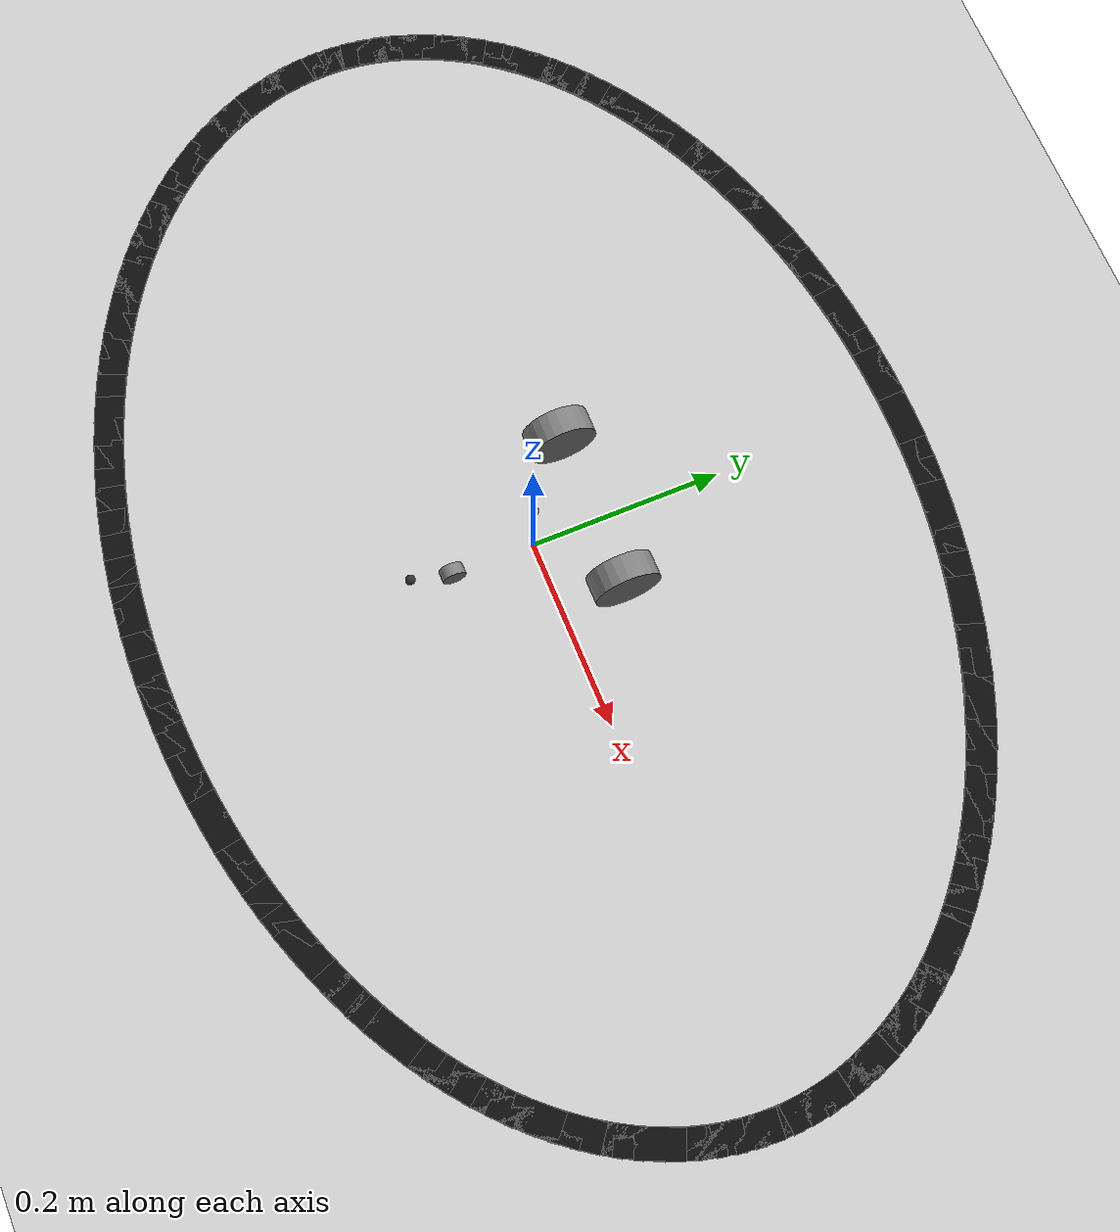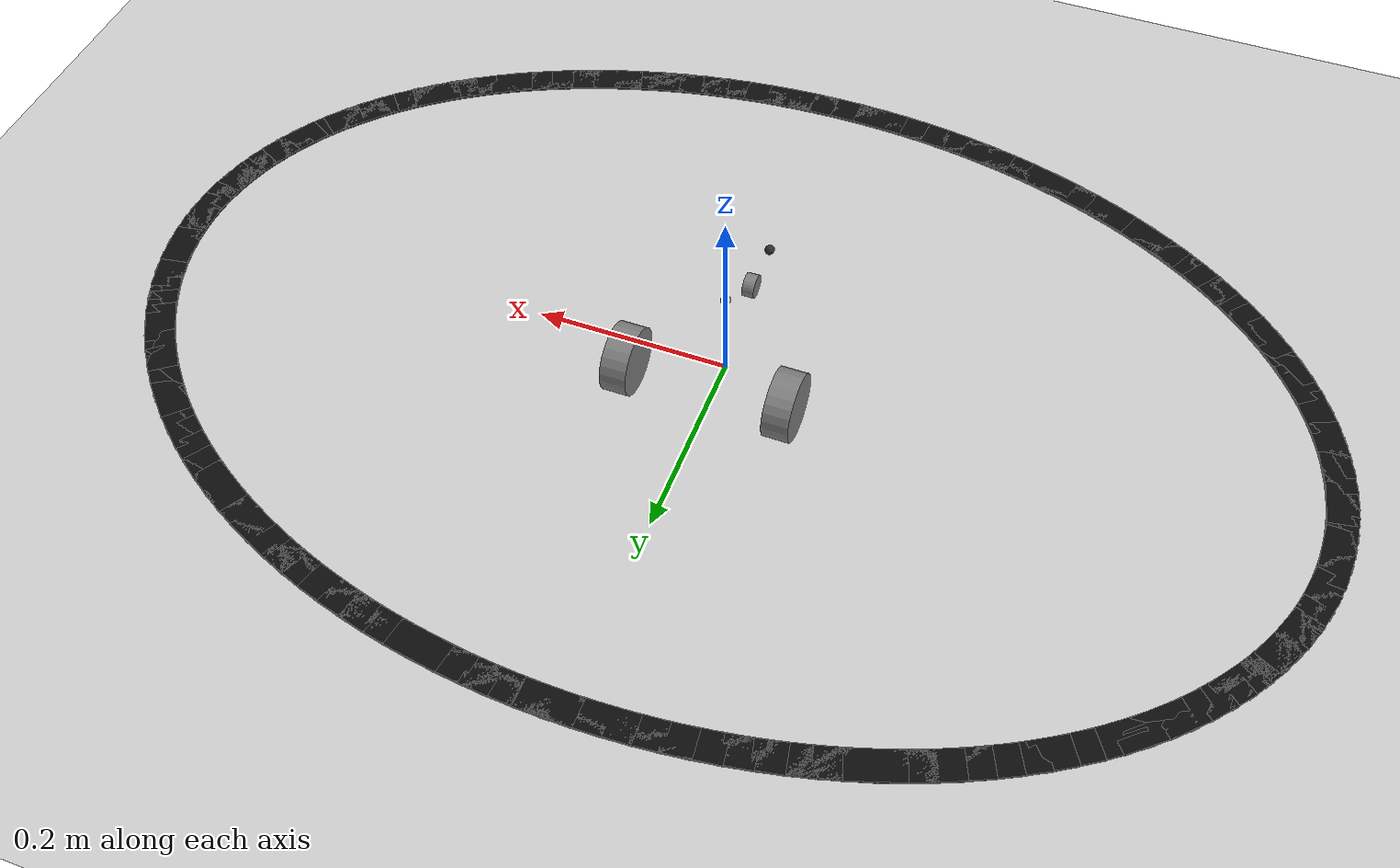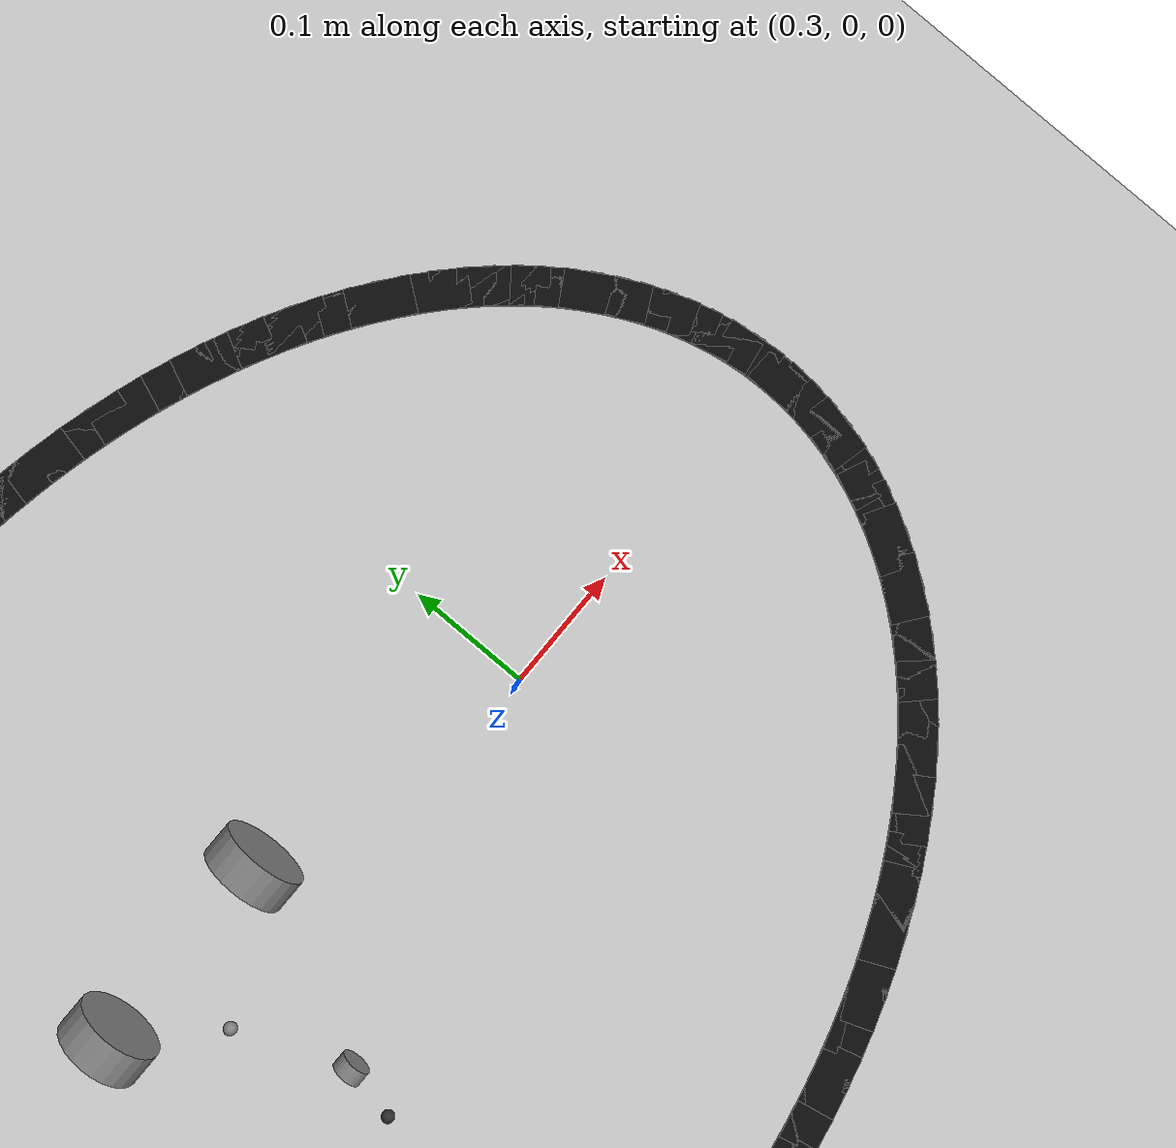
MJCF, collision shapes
<mujoco model="rover_line_oval">
  <!-- Pulls in the rover body/mesh/joint/camera tree compiled from rover.urdf -->
  <include file="rover.xml"/>
  <!-- Black line track (generated by scripts/gen_track.py) -->
  <include file="../../objects/tracks/track_oval.xml"/>

  <!-- Implicit integrator: see docs/onshape-to-robot-mjcf.md for why this matters here -->
  <!-- Offscreen framebuffer, only used for top-down renders and debugging; the
       policy's own 64x64 camera needs nothing this large. -->
  <visual>
    <global offwidth="960" offheight="640"/>
  </visual>

  <option integrator="implicitfast"/>

  <asset>
    <texture name="skybox" type="skybox" builtin="gradient"
             rgb1="0.75 0.80 0.86" rgb2="0.55 0.62 0.70" width="256" height="256"/>
  </asset>

  <worldbody>
    <!-- Overhead light so the rover and track are visible in the viewer -->
    <light diffuse=".8 .8 .8" pos="0 0 3" dir="0 0 -1"/>
    <!-- Ground plane sized to the track, not the default 10x10 rover_scene.xml floor -->
    <geom name="floor" type="plane" size="2 2 0.1" rgba=".8 .8 .8 1"/>
  </worldbody>

  <sensor>
    <jointvel name="left_wheel_speed" joint="left_axle"/>
    <jointvel name="right_wheel_speed" joint="right_axle"/>
    <velocimeter name="base_velocity" site="base_imu"/>
  </sensor>

  <actuator>
    <!-- Velocity servo on left wheel: ctrl is a target angular speed (rad/s) -->
    <velocity name="left_wheel_motor" joint="left_axle" kv="0.2" ctrlrange="-10 10"/>
    <!-- Velocity servo on right wheel: ctrl is a target angular speed (rad/s) -->
    <velocity name="right_wheel_motor" joint="right_axle" kv="0.2" ctrlrange="-10 10"/>
  </actuator>
</mujoco>

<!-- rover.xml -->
<mujoco model="rover_project">
  <!-- Auto-generated from rover.urdf via mj_saveLastXML; base_link pos/freejoint hand-adjusted, see rover_env.py -->
  <compiler angle="radian"/>

  <!-- STL meshes exported from OnShape by onshape-to-robot, one per rover part -->
  <asset>
    <mesh name="left_motor" content_type="model/stl" file="meshes/left_motor.stl"/>
    <mesh name="base_plate" content_type="model/stl" file="meshes/base_plate.stl"/>
    <mesh name="front_wheel_upper_joint" content_type="model/stl" file="meshes/front_wheel_upper_joint.stl"/>
    <mesh name="front_wheel_bracket" content_type="model/stl" file="meshes/front_wheel_bracket.stl"/>
    <mesh name="left_motor_bracket" content_type="model/stl" file="meshes/left_motor_bracket.stl"/>
    <mesh name="battery" content_type="model/stl" file="meshes/battery.stl"/>
    <mesh name="esp32" content_type="model/stl" file="meshes/esp32.stl"/>
    <mesh name="motor_controller" content_type="model/stl" file="meshes/motor_controller.stl"/>
    <mesh name="right_motor" content_type="model/stl" file="meshes/right_motor.stl"/>
    <mesh name="voltage_regulator" content_type="model/stl" file="meshes/voltage_regulator.stl"/>
    <mesh name="right_motor_bracket" content_type="model/stl" file="meshes/right_motor_bracket.stl"/>
    <mesh name="left_wheel" content_type="model/stl" file="meshes/left_wheel.stl"/>
    <mesh name="right_wheel" content_type="model/stl" file="meshes/right_wheel.stl"/>
    <mesh name="front_wheel_lower_joint" content_type="model/stl" file="meshes/front_wheel_lower_joint.stl"/>
    <mesh name="front_wheel" content_type="model/stl" file="meshes/front_wheel.stl"/>
  </asset>

  <worldbody>
    <!-- Rover chassis: free-floating base (6-DOF) so the whole rover can drive around the world -->
    <body name="base_link" pos="0 0 0.1">
      <inertial pos="-0.00237104 0.0277886 -0.0201836" quat="0.477074 0.524947 -0.508382 0.48824" mass="0.353116" diaginertia="0.00183094 0.00151404 0.000358957"/>
      <joint name="base_floating_joint" type="free"/>
      <camera name="top_cam" pos="0 -0.098 0.07" quat="0 0 0.50000000 0.86602540" fovy="60"/>
      <!-- Massless reference frame for the base velocimeter sensor. -->
      <site name="base_imu" pos="0 0 0" size="0.005"/>
      <!-- BEGIN generated lidar sites (scripts/gen_rover_lidar.py) -->
      <site name="lidar_left_0" pos="0 -0.13 -0.06" size="0.005" zaxis="0.216440 -0.976296 0"/>
      <site name="lidar_left_1" pos="0 -0.13 -0.06" size="0.005" zaxis="0.321439 -0.946930 0"/>
      <site name="lidar_left_2" pos="0 -0.13 -0.06" size="0.005" zaxis="0.422618 -0.906308 0"/>
      <site name="lidar_left_3" pos="0 -0.13 -0.06" size="0.005" zaxis="0.518773 -0.854912 0"/>
      <site name="lidar_left_4" pos="0 -0.13 -0.06" size="0.005" zaxis="0.608761 -0.793353 0"/>
      <site name="lidar_center_0" pos="0 -0.13 -0.06" size="0.005" zaxis="-0.216440 -0.976296 0"/>
      <site name="lidar_center_1" pos="0 -0.13 -0.06" size="0.005" zaxis="-0.108867 -0.994056 0"/>
      <site name="lidar_center_2" pos="0 -0.13 -0.06" size="0.005" zaxis="0.000000 -1.000000 0"/>
      <site name="lidar_center_3" pos="0 -0.13 -0.06" size="0.005" zaxis="0.108867 -0.994056 0"/>
      <site name="lidar_center_4" pos="0 -0.13 -0.06" size="0.005" zaxis="0.216440 -0.976296 0"/>
      <site name="lidar_right_0" pos="0 -0.13 -0.06" size="0.005" zaxis="-0.608761 -0.793353 0"/>
      <site name="lidar_right_1" pos="0 -0.13 -0.06" size="0.005" zaxis="-0.518773 -0.854912 0"/>
      <site name="lidar_right_2" pos="0 -0.13 -0.06" size="0.005" zaxis="-0.422618 -0.906308 0"/>
      <site name="lidar_right_3" pos="0 -0.13 -0.06" size="0.005" zaxis="-0.321439 -0.946930 0"/>
      <site name="lidar_right_4" pos="0 -0.13 -0.06" size="0.005" zaxis="-0.216440 -0.976296 0"/>
      <!-- END generated lidar sites -->
      <geom pos="0.0160863 -0.0852797 0.272765" quat="0.707105 0 0.707108 0" type="mesh" contype="0" conaffinity="0" rgba="0.647059 0.647059 0.647059 1" mesh="left_motor"/>
      <geom pos="-0.0886915 -0.18808 -0.0273587" quat="0.707105 0 0 -0.707108" type="mesh" contype="0" conaffinity="0" rgba="0.917647 0.917647 0.917647 1" mesh="base_plate"/>
      <geom pos="-0.473714 0.0946882 -0.0468587" quat="1.76043e-12 1.32679e-06 -1 -1.32679e-06" type="mesh" contype="0" conaffinity="0" rgba="0.498039 0.498039 0.498039 1" mesh="front_wheel_upper_joint"/>
      <geom pos="-0.472714 -0.220152 -0.0468587" quat="1.32679e-06 0 0 -1" type="mesh" contype="0" conaffinity="0" rgba="0.101961 0.101961 0.101961 1" mesh="front_wheel_bracket"/>
      <geom pos="-0.148629 0.205404 -0.0273587" quat="1.32679e-06 1 0 0" type="mesh" contype="0" conaffinity="0" rgba="0.352941 0.34902 0.34902 1" mesh="left_motor_bracket"/>
      <geom pos="-0.124871 0.0875749 -0.0243587" quat="0.707105 0 0 -0.707108" type="mesh" contype="0" conaffinity="0" rgba="0.0117647 0.505882 0.905882 1" mesh="battery"/>
      <geom pos="0.119292 0.0944044 -0.0213587" quat="1 0 0 0" type="mesh" contype="0" conaffinity="0" rgba="0.262745 0.282353 0.301961 1" mesh="esp32"/>
      <geom pos="0.20396 0.300238 -0.0213587" quat="1 0 0 0" type="mesh" contype="0" conaffinity="0" rgba="1 0 0 1" mesh="motor_controller"/>
      <geom pos="-0.0190726 0.115532 0.272765" quat="9.38184e-07 0.707105 9.38187e-07 -0.707108" type="mesh" contype="0" conaffinity="0" rgba="0.647059 0.647059 0.647059 1" mesh="right_motor"/>
      <geom pos="0.26251 0.228404 -0.0213587" quat="1 0 0 0" type="mesh" contype="0" conaffinity="0" rgba="0.0862745 0.317647 0.690196 1" mesh="voltage_regulator"/>
      <geom pos="0.145642 0.00584812 -0.0273587" quat="1.76037e-12 1.32679e-06 -1 -1.32679e-06" type="mesh" contype="0" conaffinity="0" rgba="0.352941 0.34902 0.34902 1" mesh="right_motor_bracket"/>
      <!-- Driven left wheel: hinge joint actuated by the left_wheel_motor in rover_scene.xml -->
      <body name="left_wheel" pos="0.0797863 0.0611262 -0.0504087" quat="0.499998 0.5 -0.500002 -0.5">
        <inertial pos="0 0 -0.01325" quat="0.5 0.5 -0.5 0.5" mass="0.034" diaginertia="2.00404e-05 1.20063e-05 1.20063e-05"/>
        <joint name="left_axle"/>
        <!-- Visual-only detailed mesh (collision handled by the cylinder primitive below) -->
        <geom pos="0.464529 -0.127654 -0.0265" quat="1 0 0 0" type="mesh" contype="0" conaffinity="0" rgba="0.176471 0.654902 0.937255 1" mesh="left_wheel"/>
        <geom type="cylinder" size="0.03435 0.01325" quat="0 0.707107 -0.707107 0"/>
      </body>
      <!-- Driven right wheel: hinge joint actuated by the right_wheel_motor in rover_scene.xml -->
      <body name="right_wheel" pos="-0.0827726 0.0611262 -0.0504087" quat="0.707105 0 0.707108 0">
        <inertial pos="0 0 -0.01325" quat="0.5 0.5 -0.5 0.5" mass="0.034" diaginertia="2.00404e-05 1.20063e-05 1.20063e-05"/>
        <joint name="right_axle"/>
        <!-- Visual-only detailed mesh (collision handled by the cylinder primitive below) -->
        <geom pos="0.464529 -0.0286537 -0.0265" quat="1 0 0 0" type="mesh" contype="0" conaffinity="0" rgba="0.176471 0.654902 0.937255 1" mesh="right_wheel"/>
        <geom type="cylinder" size="0.03435 0.01325" quat="0 0.707107 -0.707107 0"/>
      </body>
      <body name="front_wheel_lower_joint" pos="-0.00149314 -0.0978738 -0.0503587">
        <inertial pos="0 0 0" mass="0.005" diaginertia="4.5e-07 4.5e-07 4.5e-07"/>
        <joint name="front_swivel"/>
        <geom pos="0.343294 -0.190212 0" quat="1.32679e-06 1 0 0" type="mesh" contype="0" conaffinity="0" rgba="0.647059 0.647059 0.647059 1" mesh="front_wheel_lower_joint"/>
        <body name="front_wheel" pos="0.00635 0.00965 -0.0221132" quat="9.38184e-07 -0.707105 -9.38187e-07 -0.707108">
            <inertial pos="0 0 0" mass="0.005" diaginertia="2e-07 2e-07 2e-07"/>
            <joint name="front_axle"/>
          <!-- Visual-only detailed mesh (collision handled by the cylinder primitive below) -->
          <geom pos="0.344734 -0.122278 0" quat="1.32679e-06 1 0 0" type="mesh" contype="0" conaffinity="0" rgba="0.247059 0.247059 0.247059 1" mesh="front_wheel"/>
          <!-- Cylinder collision primitive: radius matches Webots' wider "flange" cylinder.
               quat derived from the mesh's *compiled* geom_quat, same fix as the main wheels above. -->
          <geom type="cylinder" size="0.0123 0.00611" quat="-0.707107 1.41421e-06 -1.41421e-06 -0.707107"/>
        </body>
      </body>
    </body>
  </worldbody>
</mujoco>

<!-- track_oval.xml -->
<mujoco model="track_oval">
  <worldbody>
    <geom name="line_0" type="box" size="0.0237 0.015 0.001" pos="0.5997 0.0087 0.001" quat="0.695445 0 0 0.718579" contype="0" conaffinity="0" group="2" rgba="0.05 0.05 0.05 1"/>
    <geom name="line_1" type="box" size="0.0237 0.015 0.001" pos="0.5986 0.0262 0.001" quat="0.671624 0 0 0.740893" contype="0" conaffinity="0" group="2" rgba="0.05 0.05 0.05 1"/>
    <geom name="line_2" type="box" size="0.0238 0.015 0.001" pos="0.5963 0.0435 0.001" quat="0.647262 0 0 0.762268" contype="0" conaffinity="0" group="2" rgba="0.05 0.05 0.05 1"/>
    <geom name="line_3" type="box" size="0.0239 0.015 0.001" pos="0.5929 0.0608 0.001" quat="0.622513 0 0 0.782609" contype="0" conaffinity="0" group="2" rgba="0.05 0.05 0.05 1"/>
    <geom name="line_4" type="box" size="0.0239 0.015 0.001" pos="0.5883 0.0780 0.001" quat="0.597531 0 0 0.801846" contype="0" conaffinity="0" group="2" rgba="0.05 0.05 0.05 1"/>
    <geom name="line_5" type="box" size="0.0240 0.015 0.001" pos="0.5827 0.0951 0.001" quat="0.572464 0 0 0.819930" contype="0" conaffinity="0" group="2" rgba="0.05 0.05 0.05 1"/>
    <geom name="line_6" type="box" size="0.0241 0.015 0.001" pos="0.5759 0.1119 0.001" quat="0.547451 0 0 0.836838" contype="0" conaffinity="0" group="2" rgba="0.05 0.05 0.05 1"/>
    <geom name="line_7" type="box" size="0.0243 0.015 0.001" pos="0.5680 0.1285 0.001" quat="0.522615 0 0 0.852569" contype="0" conaffinity="0" group="2" rgba="0.05 0.05 0.05 1"/>
    <geom name="line_8" type="box" size="0.0244 0.015 0.001" pos="0.5591 0.1449 0.001" quat="0.498066 0 0 0.867139" contype="0" conaffinity="0" group="2" rgba="0.05 0.05 0.05 1"/>
    <geom name="line_9" type="box" size="0.0246 0.015 0.001" pos="0.5491 0.1611 0.001" quat="0.473893 0 0 0.880583" contype="0" conaffinity="0" group="2" rgba="0.05 0.05 0.05 1"/>
    <geom name="line_10" type="box" size="0.0247 0.015 0.001" pos="0.5380 0.1769 0.001" quat="0.450169 0 0 0.892944" contype="0" conaffinity="0" group="2" rgba="0.05 0.05 0.05 1"/>
    <geom name="line_11" type="box" size="0.0249 0.015 0.001" pos="0.5259 0.1923 0.001" quat="0.426948 0 0 0.904276" contype="0" conaffinity="0" group="2" rgba="0.05 0.05 0.05 1"/>
    <geom name="line_12" type="box" size="0.0251 0.015 0.001" pos="0.5128 0.2075 0.001" quat="0.404270 0 0 0.914639" contype="0" conaffinity="0" group="2" rgba="0.05 0.05 0.05 1"/>
    <geom name="line_13" type="box" size="0.0253 0.015 0.001" pos="0.4988 0.2222 0.001" quat="0.382160 0 0 0.924096" contype="0" conaffinity="0" group="2" rgba="0.05 0.05 0.05 1"/>
    <geom name="line_14" type="box" size="0.0255 0.015 0.001" pos="0.4838 0.2365 0.001" quat="0.360629 0 0 0.932709" contype="0" conaffinity="0" group="2" rgba="0.05 0.05 0.05 1"/>
    <geom name="line_15" type="box" size="0.0257 0.015 0.001" pos="0.4678 0.2503 0.001" quat="0.339680 0 0 0.940541" contype="0" conaffinity="0" group="2" rgba="0.05 0.05 0.05 1"/>
    <geom name="line_16" type="box" size="0.0258 0.015 0.001" pos="0.4510 0.2637 0.001" quat="0.319304 0 0 0.947652" contype="0" conaffinity="0" group="2" rgba="0.05 0.05 0.05 1"/>
    <geom name="line_17" type="box" size="0.0260 0.015 0.001" pos="0.4333 0.2765 0.001" quat="0.299488 0 0 0.954100" contype="0" conaffinity="0" group="2" rgba="0.05 0.05 0.05 1"/>
    <geom name="line_18" type="box" size="0.0262 0.015 0.001" pos="0.4148 0.2889 0.001" quat="0.280213 0 0 0.959938" contype="0" conaffinity="0" group="2" rgba="0.05 0.05 0.05 1"/>
    <geom name="line_19" type="box" size="0.0264 0.015 0.001" pos="0.3955 0.3007 0.001" quat="0.261454 0 0 0.965216" contype="0" conaffinity="0" group="2" rgba="0.05 0.05 0.05 1"/>
    <geom name="line_20" type="box" size="0.0266 0.015 0.001" pos="0.3755 0.3119 0.001" quat="0.243186 0 0 0.969980" contype="0" conaffinity="0" group="2" rgba="0.05 0.05 0.05 1"/>
    <geom name="line_21" type="box" size="0.0267 0.015 0.001" pos="0.3547 0.3225 0.001" quat="0.225379 0 0 0.974271" contype="0" conaffinity="0" group="2" rgba="0.05 0.05 0.05 1"/>
    <geom name="line_22" type="box" size="0.0269 0.015 0.001" pos="0.3333 0.3325 0.001" quat="0.208003 0 0 0.978128" contype="0" conaffinity="0" group="2" rgba="0.05 0.05 0.05 1"/>
    <geom name="line_23" type="box" size="0.0271 0.015 0.001" pos="0.3112 0.3419 0.001" quat="0.191027 0 0 0.981585" contype="0" conaffinity="0" group="2" rgba="0.05 0.05 0.05 1"/>
    <geom name="line_24" type="box" size="0.0272 0.015 0.001" pos="0.2885 0.3506 0.001" quat="0.174420 0 0 0.984671" contype="0" conaffinity="0" group="2" rgba="0.05 0.05 0.05 1"/>
    <geom name="line_25" type="box" size="0.0274 0.015 0.001" pos="0.2653 0.3587 0.001" quat="0.158149 0 0 0.987415" contype="0" conaffinity="0" group="2" rgba="0.05 0.05 0.05 1"/>
    <geom name="line_26" type="box" size="0.0275 0.015 0.001" pos="0.2416 0.3660 0.001" quat="0.142184 0 0 0.989840" contype="0" conaffinity="0" group="2" rgba="0.05 0.05 0.05 1"/>
    <geom name="line_27" type="box" size="0.0276 0.015 0.001" pos="0.2174 0.3727 0.001" quat="0.126494 0 0 0.991967" contype="0" conaffinity="0" group="2" rgba="0.05 0.05 0.05 1"/>
    <geom name="line_28" type="box" size="0.0277 0.015 0.001" pos="0.1928 0.3787 0.001" quat="0.111048 0 0 0.993815" contype="0" conaffinity="0" group="2" rgba="0.05 0.05 0.05 1"/>
    <geom name="line_29" type="box" size="0.0278 0.015 0.001" pos="0.1679 0.3839 0.001" quat="0.095815 0 0 0.995399" contype="0" conaffinity="0" group="2" rgba="0.05 0.05 0.05 1"/>
    <geom name="line_30" type="box" size="0.0279 0.015 0.001" pos="0.1426 0.3884 0.001" quat="0.080766 0 0 0.996733" contype="0" conaffinity="0" group="2" rgba="0.05 0.05 0.05 1"/>
    <geom name="line_31" type="box" size="0.0279 0.015 0.001" pos="0.1170 0.3922 0.001" quat="0.065872 0 0 0.997828" contype="0" conaffinity="0" group="2" rgba="0.05 0.05 0.05 1"/>
    <geom name="line_32" type="box" size="0.0280 0.015 0.001" pos="0.0913 0.3953 0.001" quat="0.051104 0 0 0.998693" contype="0" conaffinity="0" group="2" rgba="0.05 0.05 0.05 1"/>
    <geom name="line_33" type="box" size="0.0280 0.015 0.001" pos="0.0653 0.3975 0.001" quat="0.036433 0 0 0.999336" contype="0" conaffinity="0" group="2" rgba="0.05 0.05 0.05 1"/>
    <geom name="line_34" type="box" size="0.0281 0.015 0.001" pos="0.0392 0.3990 0.001" quat="0.021832 0 0 0.999762" contype="0" conaffinity="0" group="2" rgba="0.05 0.05 0.05 1"/>
    <geom name="line_35" type="box" size="0.0281 0.015 0.001" pos="0.0131 0.3998 0.001" quat="0.007273 0 0 0.999974" contype="0" conaffinity="0" group="2" rgba="0.05 0.05 0.05 1"/>
    <geom name="line_36" type="box" size="0.0281 0.015 0.001" pos="-0.0131 0.3998 0.001" quat="0.007273 0 0 -0.999974" contype="0" conaffinity="0" group="2" rgba="0.05 0.05 0.05 1"/>
    <geom name="line_37" type="box" size="0.0281 0.015 0.001" pos="-0.0392 0.3990 0.001" quat="0.021832 0 0 -0.999762" contype="0" conaffinity="0" group="2" rgba="0.05 0.05 0.05 1"/>
    <geom name="line_38" type="box" size="0.0280 0.015 0.001" pos="-0.0653 0.3975 0.001" quat="0.036433 0 0 -0.999336" contype="0" conaffinity="0" group="2" rgba="0.05 0.05 0.05 1"/>
    <geom name="line_39" type="box" size="0.0280 0.015 0.001" pos="-0.0913 0.3953 0.001" quat="0.051104 0 0 -0.998693" contype="0" conaffinity="0" group="2" rgba="0.05 0.05 0.05 1"/>
    <geom name="line_40" type="box" size="0.0279 0.015 0.001" pos="-0.1170 0.3922 0.001" quat="0.065872 0 0 -0.997828" contype="0" conaffinity="0" group="2" rgba="0.05 0.05 0.05 1"/>
    <geom name="line_41" type="box" size="0.0279 0.015 0.001" pos="-0.1426 0.3884 0.001" quat="0.080766 0 0 -0.996733" contype="0" conaffinity="0" group="2" rgba="0.05 0.05 0.05 1"/>
    <geom name="line_42" type="box" size="0.0278 0.015 0.001" pos="-0.1679 0.3839 0.001" quat="0.095815 0 0 -0.995399" contype="0" conaffinity="0" group="2" rgba="0.05 0.05 0.05 1"/>
    <geom name="line_43" type="box" size="0.0277 0.015 0.001" pos="-0.1928 0.3787 0.001" quat="0.111048 0 0 -0.993815" contype="0" conaffinity="0" group="2" rgba="0.05 0.05 0.05 1"/>
    <geom name="line_44" type="box" size="0.0276 0.015 0.001" pos="-0.2174 0.3727 0.001" quat="0.126494 0 0 -0.991967" contype="0" conaffinity="0" group="2" rgba="0.05 0.05 0.05 1"/>
    <geom name="line_45" type="box" size="0.0275 0.015 0.001" pos="-0.2416 0.3660 0.001" quat="0.142184 0 0 -0.989840" contype="0" conaffinity="0" group="2" rgba="0.05 0.05 0.05 1"/>
    <geom name="line_46" type="box" size="0.0274 0.015 0.001" pos="-0.2653 0.3587 0.001" quat="0.158149 0 0 -0.987415" contype="0" conaffinity="0" group="2" rgba="0.05 0.05 0.05 1"/>
    <geom name="line_47" type="box" size="0.0272 0.015 0.001" pos="-0.2885 0.3506 0.001" quat="0.174420 0 0 -0.984671" contype="0" conaffinity="0" group="2" rgba="0.05 0.05 0.05 1"/>
    <geom name="line_48" type="box" size="0.0271 0.015 0.001" pos="-0.3112 0.3419 0.001" quat="0.191027 0 0 -0.981585" contype="0" conaffinity="0" group="2" rgba="0.05 0.05 0.05 1"/>
    <geom name="line_49" type="box" size="0.0269 0.015 0.001" pos="-0.3333 0.3325 0.001" quat="0.208003 0 0 -0.978128" contype="0" conaffinity="0" group="2" rgba="0.05 0.05 0.05 1"/>
    <geom name="line_50" type="box" size="0.0267 0.015 0.001" pos="-0.3547 0.3225 0.001" quat="0.225379 0 0 -0.974271" contype="0" conaffinity="0" group="2" rgba="0.05 0.05 0.05 1"/>
    <geom name="line_51" type="box" size="0.0266 0.015 0.001" pos="-0.3755 0.3119 0.001" quat="0.243186 0 0 -0.969980" contype="0" conaffinity="0" group="2" rgba="0.05 0.05 0.05 1"/>
    <geom name="line_52" type="box" size="0.0264 0.015 0.001" pos="-0.3955 0.3007 0.001" quat="0.261454 0 0 -0.965216" contype="0" conaffinity="0" group="2" rgba="0.05 0.05 0.05 1"/>
    <geom name="line_53" type="box" size="0.0262 0.015 0.001" pos="-0.4148 0.2889 0.001" quat="0.280213 0 0 -0.959938" contype="0" conaffinity="0" group="2" rgba="0.05 0.05 0.05 1"/>
    <geom name="line_54" type="box" size="0.0260 0.015 0.001" pos="-0.4333 0.2765 0.001" quat="0.299488 0 0 -0.954100" contype="0" conaffinity="0" group="2" rgba="0.05 0.05 0.05 1"/>
    <geom name="line_55" type="box" size="0.0258 0.015 0.001" pos="-0.4510 0.2637 0.001" quat="0.319304 0 0 -0.947652" contype="0" conaffinity="0" group="2" rgba="0.05 0.05 0.05 1"/>
    <geom name="line_56" type="box" size="0.0257 0.015 0.001" pos="-0.4678 0.2503 0.001" quat="0.339680 0 0 -0.940541" contype="0" conaffinity="0" group="2" rgba="0.05 0.05 0.05 1"/>
    <geom name="line_57" type="box" size="0.0255 0.015 0.001" pos="-0.4838 0.2365 0.001" quat="0.360629 0 0 -0.932709" contype="0" conaffinity="0" group="2" rgba="0.05 0.05 0.05 1"/>
    <geom name="line_58" type="box" size="0.0253 0.015 0.001" pos="-0.4988 0.2222 0.001" quat="0.382160 0 0 -0.924096" contype="0" conaffinity="0" group="2" rgba="0.05 0.05 0.05 1"/>
    <geom name="line_59" type="box" size="0.0251 0.015 0.001" pos="-0.5128 0.2075 0.001" quat="0.404270 0 0 -0.914639" contype="0" conaffinity="0" group="2" rgba="0.05 0.05 0.05 1"/>
    <geom name="line_60" type="box" size="0.0249 0.015 0.001" pos="-0.5259 0.1923 0.001" quat="0.426948 0 0 -0.904276" contype="0" conaffinity="0" group="2" rgba="0.05 0.05 0.05 1"/>
    <geom name="line_61" type="box" size="0.0247 0.015 0.001" pos="-0.5380 0.1769 0.001" quat="0.450169 0 0 -0.892944" contype="0" conaffinity="0" group="2" rgba="0.05 0.05 0.05 1"/>
    <geom name="line_62" type="box" size="0.0246 0.015 0.001" pos="-0.5491 0.1611 0.001" quat="0.473893 0 0 -0.880583" contype="0" conaffinity="0" group="2" rgba="0.05 0.05 0.05 1"/>
    <geom name="line_63" type="box" size="0.0244 0.015 0.001" pos="-0.5591 0.1449 0.001" quat="0.498066 0 0 -0.867139" contype="0" conaffinity="0" group="2" rgba="0.05 0.05 0.05 1"/>
    <geom name="line_64" type="box" size="0.0243 0.015 0.001" pos="-0.5680 0.1285 0.001" quat="0.522615 0 0 -0.852569" contype="0" conaffinity="0" group="2" rgba="0.05 0.05 0.05 1"/>
    <geom name="line_65" type="box" size="0.0241 0.015 0.001" pos="-0.5759 0.1119 0.001" quat="0.547451 0 0 -0.836838" contype="0" conaffinity="0" group="2" rgba="0.05 0.05 0.05 1"/>
    <geom name="line_66" type="box" size="0.0240 0.015 0.001" pos="-0.5827 0.0951 0.001" quat="0.572464 0 0 -0.819930" contype="0" conaffinity="0" group="2" rgba="0.05 0.05 0.05 1"/>
    <geom name="line_67" type="box" size="0.0239 0.015 0.001" pos="-0.5883 0.0780 0.001" quat="0.597531 0 0 -0.801846" contype="0" conaffinity="0" group="2" rgba="0.05 0.05 0.05 1"/>
    <geom name="line_68" type="box" size="0.0239 0.015 0.001" pos="-0.5929 0.0608 0.001" quat="0.622513 0 0 -0.782609" contype="0" conaffinity="0" group="2" rgba="0.05 0.05 0.05 1"/>
    <geom name="line_69" type="box" size="0.0238 0.015 0.001" pos="-0.5963 0.0435 0.001" quat="0.647262 0 0 -0.762268" contype="0" conaffinity="0" group="2" rgba="0.05 0.05 0.05 1"/>
    <geom name="line_70" type="box" size="0.0237 0.015 0.001" pos="-0.5986 0.0262 0.001" quat="0.671624 0 0 -0.740893" contype="0" conaffinity="0" group="2" rgba="0.05 0.05 0.05 1"/>
    <geom name="line_71" type="box" size="0.0237 0.015 0.001" pos="-0.5997 0.0087 0.001" quat="0.695445 0 0 -0.718579" contype="0" conaffinity="0" group="2" rgba="0.05 0.05 0.05 1"/>
    <geom name="line_72" type="box" size="0.0237 0.015 0.001" pos="-0.5997 -0.0087 0.001" quat="0.718579 0 0 -0.695445" contype="0" conaffinity="0" group="2" rgba="0.05 0.05 0.05 1"/>
    <geom name="line_73" type="box" size="0.0237 0.015 0.001" pos="-0.5986 -0.0262 0.001" quat="0.740893 0 0 -0.671624" contype="0" conaffinity="0" group="2" rgba="0.05 0.05 0.05 1"/>
    <geom name="line_74" type="box" size="0.0238 0.015 0.001" pos="-0.5963 -0.0435 0.001" quat="0.762268 0 0 -0.647262" contype="0" conaffinity="0" group="2" rgba="0.05 0.05 0.05 1"/>
    <geom name="line_75" type="box" size="0.0239 0.015 0.001" pos="-0.5929 -0.0608 0.001" quat="0.782609 0 0 -0.622513" contype="0" conaffinity="0" group="2" rgba="0.05 0.05 0.05 1"/>
    <geom name="line_76" type="box" size="0.0239 0.015 0.001" pos="-0.5883 -0.0780 0.001" quat="0.801846 0 0 -0.597531" contype="0" conaffinity="0" group="2" rgba="0.05 0.05 0.05 1"/>
    <geom name="line_77" type="box" size="0.0240 0.015 0.001" pos="-0.5827 -0.0951 0.001" quat="0.819930 0 0 -0.572464" contype="0" conaffinity="0" group="2" rgba="0.05 0.05 0.05 1"/>
    <geom name="line_78" type="box" size="0.0241 0.015 0.001" pos="-0.5759 -0.1119 0.001" quat="0.836838 0 0 -0.547451" contype="0" conaffinity="0" group="2" rgba="0.05 0.05 0.05 1"/>
    <geom name="line_79" type="box" size="0.0243 0.015 0.001" pos="-0.5680 -0.1285 0.001" quat="0.852569 0 0 -0.522615" contype="0" conaffinity="0" group="2" rgba="0.05 0.05 0.05 1"/>
    <geom name="line_80" type="box" size="0.0244 0.015 0.001" pos="-0.5591 -0.1449 0.001" quat="0.867139 0 0 -0.498066" contype="0" conaffinity="0" group="2" rgba="0.05 0.05 0.05 1"/>
    <geom name="line_81" type="box" size="0.0246 0.015 0.001" pos="-0.5491 -0.1611 0.001" quat="0.880583 0 0 -0.473893" contype="0" conaffinity="0" group="2" rgba="0.05 0.05 0.05 1"/>
    <geom name="line_82" type="box" size="0.0247 0.015 0.001" pos="-0.5380 -0.1769 0.001" quat="0.892944 0 0 -0.450169" contype="0" conaffinity="0" group="2" rgba="0.05 0.05 0.05 1"/>
    <geom name="line_83" type="box" size="0.0249 0.015 0.001" pos="-0.5259 -0.1923 0.001" quat="0.904276 0 0 -0.426948" contype="0" conaffinity="0" group="2" rgba="0.05 0.05 0.05 1"/>
    <geom name="line_84" type="box" size="0.0251 0.015 0.001" pos="-0.5128 -0.2075 0.001" quat="0.914639 0 0 -0.404270" contype="0" conaffinity="0" group="2" rgba="0.05 0.05 0.05 1"/>
    <geom name="line_85" type="box" size="0.0253 0.015 0.001" pos="-0.4988 -0.2222 0.001" quat="0.924096 0 0 -0.382160" contype="0" conaffinity="0" group="2" rgba="0.05 0.05 0.05 1"/>
    <geom name="line_86" type="box" size="0.0255 0.015 0.001" pos="-0.4838 -0.2365 0.001" quat="0.932709 0 0 -0.360629" contype="0" conaffinity="0" group="2" rgba="0.05 0.05 0.05 1"/>
    <geom name="line_87" type="box" size="0.0257 0.015 0.001" pos="-0.4678 -0.2503 0.001" quat="0.940541 0 0 -0.339680" contype="0" conaffinity="0" group="2" rgba="0.05 0.05 0.05 1"/>
    <geom name="line_88" type="box" size="0.0258 0.015 0.001" pos="-0.4510 -0.2637 0.001" quat="0.947652 0 0 -0.319304" contype="0" conaffinity="0" group="2" rgba="0.05 0.05 0.05 1"/>
    <geom name="line_89" type="box" size="0.0260 0.015 0.001" pos="-0.4333 -0.2765 0.001" quat="0.954100 0 0 -0.299488" contype="0" conaffinity="0" group="2" rgba="0.05 0.05 0.05 1"/>
    <geom name="line_90" type="box" size="0.0262 0.015 0.001" pos="-0.4148 -0.2889 0.001" quat="0.959938 0 0 -0.280213" contype="0" conaffinity="0" group="2" rgba="0.05 0.05 0.05 1"/>
    <geom name="line_91" type="box" size="0.0264 0.015 0.001" pos="-0.3955 -0.3007 0.001" quat="0.965216 0 0 -0.261454" contype="0" conaffinity="0" group="2" rgba="0.05 0.05 0.05 1"/>
    <geom name="line_92" type="box" size="0.0266 0.015 0.001" pos="-0.3755 -0.3119 0.001" quat="0.969980 0 0 -0.243186" contype="0" conaffinity="0" group="2" rgba="0.05 0.05 0.05 1"/>
    <geom name="line_93" type="box" size="0.0267 0.015 0.001" pos="-0.3547 -0.3225 0.001" quat="0.974271 0 0 -0.225379" contype="0" conaffinity="0" group="2" rgba="0.05 0.05 0.05 1"/>
    <geom name="line_94" type="box" size="0.0269 0.015 0.001" pos="-0.3333 -0.3325 0.001" quat="0.978128 0 0 -0.208003" contype="0" conaffinity="0" group="2" rgba="0.05 0.05 0.05 1"/>
    <geom name="line_95" type="box" size="0.0271 0.015 0.001" pos="-0.3112 -0.3419 0.001" quat="0.981585 0 0 -0.191027" contype="0" conaffinity="0" group="2" rgba="0.05 0.05 0.05 1"/>
    <geom name="line_96" type="box" size="0.0272 0.015 0.001" pos="-0.2885 -0.3506 0.001" quat="0.984671 0 0 -0.174420" contype="0" conaffinity="0" group="2" rgba="0.05 0.05 0.05 1"/>
    <geom name="line_97" type="box" size="0.0274 0.015 0.001" pos="-0.2653 -0.3587 0.001" quat="0.987415 0 0 -0.158149" contype="0" conaffinity="0" group="2" rgba="0.05 0.05 0.05 1"/>
    <geom name="line_98" type="box" size="0.0275 0.015 0.001" pos="-0.2416 -0.3660 0.001" quat="0.989840 0 0 -0.142184" contype="0" conaffinity="0" group="2" rgba="0.05 0.05 0.05 1"/>
    <geom name="line_99" type="box" size="0.0276 0.015 0.001" pos="-0.2174 -0.3727 0.001" quat="0.991967 0 0 -0.126494" contype="0" conaffinity="0" group="2" rgba="0.05 0.05 0.05 1"/>
    <geom name="line_100" type="box" size="0.0277 0.015 0.001" pos="-0.1928 -0.3787 0.001" quat="0.993815 0 0 -0.111048" contype="0" conaffinity="0" group="2" rgba="0.05 0.05 0.05 1"/>
    <geom name="line_101" type="box" size="0.0278 0.015 0.001" pos="-0.1679 -0.3839 0.001" quat="0.995399 0 0 -0.095815" contype="0" conaffinity="0" group="2" rgba="0.05 0.05 0.05 1"/>
    <geom name="line_102" type="box" size="0.0279 0.015 0.001" pos="-0.1426 -0.3884 0.001" quat="0.996733 0 0 -0.080766" contype="0" conaffinity="0" group="2" rgba="0.05 0.05 0.05 1"/>
    <geom name="line_103" type="box" size="0.0279 0.015 0.001" pos="-0.1170 -0.3922 0.001" quat="0.997828 0 0 -0.065872" contype="0" conaffinity="0" group="2" rgba="0.05 0.05 0.05 1"/>
    <geom name="line_104" type="box" size="0.0280 0.015 0.001" pos="-0.0913 -0.3953 0.001" quat="0.998693 0 0 -0.051104" contype="0" conaffinity="0" group="2" rgba="0.05 0.05 0.05 1"/>
    <geom name="line_105" type="box" size="0.0280 0.015 0.001" pos="-0.0653 -0.3975 0.001" quat="0.999336 0 0 -0.036433" contype="0" conaffinity="0" group="2" rgba="0.05 0.05 0.05 1"/>
    <geom name="line_106" type="box" size="0.0281 0.015 0.001" pos="-0.0392 -0.3990 0.001" quat="0.999762 0 0 -0.021832" contype="0" conaffinity="0" group="2" rgba="0.05 0.05 0.05 1"/>
    <geom name="line_107" type="box" size="0.0281 0.015 0.001" pos="-0.0131 -0.3998 0.001" quat="0.999974 0 0 -0.007273" contype="0" conaffinity="0" group="2" rgba="0.05 0.05 0.05 1"/>
    <geom name="line_108" type="box" size="0.0281 0.015 0.001" pos="0.0131 -0.3998 0.001" quat="0.999974 0 0 0.007273" contype="0" conaffinity="0" group="2" rgba="0.05 0.05 0.05 1"/>
    <geom name="line_109" type="box" size="0.0281 0.015 0.001" pos="0.0392 -0.3990 0.001" quat="0.999762 0 0 0.021832" contype="0" conaffinity="0" group="2" rgba="0.05 0.05 0.05 1"/>
    <geom name="line_110" type="box" size="0.0280 0.015 0.001" pos="0.0653 -0.3975 0.001" quat="0.999336 0 0 0.036433" contype="0" conaffinity="0" group="2" rgba="0.05 0.05 0.05 1"/>
    <geom name="line_111" type="box" size="0.0280 0.015 0.001" pos="0.0913 -0.3953 0.001" quat="0.998693 0 0 0.051104" contype="0" conaffinity="0" group="2" rgba="0.05 0.05 0.05 1"/>
    <geom name="line_112" type="box" size="0.0279 0.015 0.001" pos="0.1170 -0.3922 0.001" quat="0.997828 0 0 0.065872" contype="0" conaffinity="0" group="2" rgba="0.05 0.05 0.05 1"/>
    <geom name="line_113" type="box" size="0.0279 0.015 0.001" pos="0.1426 -0.3884 0.001" quat="0.996733 0 0 0.080766" contype="0" conaffinity="0" group="2" rgba="0.05 0.05 0.05 1"/>
    <geom name="line_114" type="box" size="0.0278 0.015 0.001" pos="0.1679 -0.3839 0.001" quat="0.995399 0 0 0.095815" contype="0" conaffinity="0" group="2" rgba="0.05 0.05 0.05 1"/>
    <geom name="line_115" type="box" size="0.0277 0.015 0.001" pos="0.1928 -0.3787 0.001" quat="0.993815 0 0 0.111048" contype="0" conaffinity="0" group="2" rgba="0.05 0.05 0.05 1"/>
    <geom name="line_116" type="box" size="0.0276 0.015 0.001" pos="0.2174 -0.3727 0.001" quat="0.991967 0 0 0.126494" contype="0" conaffinity="0" group="2" rgba="0.05 0.05 0.05 1"/>
    <geom name="line_117" type="box" size="0.0275 0.015 0.001" pos="0.2416 -0.3660 0.001" quat="0.989840 0 0 0.142184" contype="0" conaffinity="0" group="2" rgba="0.05 0.05 0.05 1"/>
    <geom name="line_118" type="box" size="0.0274 0.015 0.001" pos="0.2653 -0.3587 0.001" quat="0.987415 0 0 0.158149" contype="0" conaffinity="0" group="2" rgba="0.05 0.05 0.05 1"/>
    <geom name="line_119" type="box" size="0.0272 0.015 0.001" pos="0.2885 -0.3506 0.001" quat="0.984671 0 0 0.174420" contype="0" conaffinity="0" group="2" rgba="0.05 0.05 0.05 1"/>
    <geom name="line_120" type="box" size="0.0271 0.015 0.001" pos="0.3112 -0.3419 0.001" quat="0.981585 0 0 0.191027" contype="0" conaffinity="0" group="2" rgba="0.05 0.05 0.05 1"/>
    <geom name="line_121" type="box" size="0.0269 0.015 0.001" pos="0.3333 -0.3325 0.001" quat="0.978128 0 0 0.208003" contype="0" conaffinity="0" group="2" rgba="0.05 0.05 0.05 1"/>
    <geom name="line_122" type="box" size="0.0267 0.015 0.001" pos="0.3547 -0.3225 0.001" quat="0.974271 0 0 0.225379" contype="0" conaffinity="0" group="2" rgba="0.05 0.05 0.05 1"/>
    <geom name="line_123" type="box" size="0.0266 0.015 0.001" pos="0.3755 -0.3119 0.001" quat="0.969980 0 0 0.243186" contype="0" conaffinity="0" group="2" rgba="0.05 0.05 0.05 1"/>
    <geom name="line_124" type="box" size="0.0264 0.015 0.001" pos="0.3955 -0.3007 0.001" quat="0.965216 0 0 0.261454" contype="0" conaffinity="0" group="2" rgba="0.05 0.05 0.05 1"/>
    <geom name="line_125" type="box" size="0.0262 0.015 0.001" pos="0.4148 -0.2889 0.001" quat="0.959938 0 0 0.280213" contype="0" conaffinity="0" group="2" rgba="0.05 0.05 0.05 1"/>
    <geom name="line_126" type="box" size="0.0260 0.015 0.001" pos="0.4333 -0.2765 0.001" quat="0.954100 0 0 0.299488" contype="0" conaffinity="0" group="2" rgba="0.05 0.05 0.05 1"/>
    <geom name="line_127" type="box" size="0.0258 0.015 0.001" pos="0.4510 -0.2637 0.001" quat="0.947652 0 0 0.319304" contype="0" conaffinity="0" group="2" rgba="0.05 0.05 0.05 1"/>
    <geom name="line_128" type="box" size="0.0257 0.015 0.001" pos="0.4678 -0.2503 0.001" quat="0.940541 0 0 0.339680" contype="0" conaffinity="0" group="2" rgba="0.05 0.05 0.05 1"/>
    <geom name="line_129" type="box" size="0.0255 0.015 0.001" pos="0.4838 -0.2365 0.001" quat="0.932709 0 0 0.360629" contype="0" conaffinity="0" group="2" rgba="0.05 0.05 0.05 1"/>
    <geom name="line_130" type="box" size="0.0253 0.015 0.001" pos="0.4988 -0.2222 0.001" quat="0.924096 0 0 0.382160" contype="0" conaffinity="0" group="2" rgba="0.05 0.05 0.05 1"/>
    <geom name="line_131" type="box" size="0.0251 0.015 0.001" pos="0.5128 -0.2075 0.001" quat="0.914639 0 0 0.404270" contype="0" conaffinity="0" group="2" rgba="0.05 0.05 0.05 1"/>
    <geom name="line_132" type="box" size="0.0249 0.015 0.001" pos="0.5259 -0.1923 0.001" quat="0.904276 0 0 0.426948" contype="0" conaffinity="0" group="2" rgba="0.05 0.05 0.05 1"/>
    <geom name="line_133" type="box" size="0.0247 0.015 0.001" pos="0.5380 -0.1769 0.001" quat="0.892944 0 0 0.450169" contype="0" conaffinity="0" group="2" rgba="0.05 0.05 0.05 1"/>
    <geom name="line_134" type="box" size="0.0246 0.015 0.001" pos="0.5491 -0.1611 0.001" quat="0.880583 0 0 0.473893" contype="0" conaffinity="0" group="2" rgba="0.05 0.05 0.05 1"/>
    <geom name="line_135" type="box" size="0.0244 0.015 0.001" pos="0.5591 -0.1449 0.001" quat="0.867139 0 0 0.498066" contype="0" conaffinity="0" group="2" rgba="0.05 0.05 0.05 1"/>
    <geom name="line_136" type="box" size="0.0243 0.015 0.001" pos="0.5680 -0.1285 0.001" quat="0.852569 0 0 0.522615" contype="0" conaffinity="0" group="2" rgba="0.05 0.05 0.05 1"/>
    <geom name="line_137" type="box" size="0.0241 0.015 0.001" pos="0.5759 -0.1119 0.001" quat="0.836838 0 0 0.547451" contype="0" conaffinity="0" group="2" rgba="0.05 0.05 0.05 1"/>
    <geom name="line_138" type="box" size="0.0240 0.015 0.001" pos="0.5827 -0.0951 0.001" quat="0.819930 0 0 0.572464" contype="0" conaffinity="0" group="2" rgba="0.05 0.05 0.05 1"/>
    <geom name="line_139" type="box" size="0.0239 0.015 0.001" pos="0.5883 -0.0780 0.001" quat="0.801846 0 0 0.597531" contype="0" conaffinity="0" group="2" rgba="0.05 0.05 0.05 1"/>
    <geom name="line_140" type="box" size="0.0239 0.015 0.001" pos="0.5929 -0.0608 0.001" quat="0.782609 0 0 0.622513" contype="0" conaffinity="0" group="2" rgba="0.05 0.05 0.05 1"/>
    <geom name="line_141" type="box" size="0.0238 0.015 0.001" pos="0.5963 -0.0435 0.001" quat="0.762268 0 0 0.647262" contype="0" conaffinity="0" group="2" rgba="0.05 0.05 0.05 1"/>
    <geom name="line_142" type="box" size="0.0237 0.015 0.001" pos="0.5986 -0.0262 0.001" quat="0.740893 0 0 0.671624" contype="0" conaffinity="0" group="2" rgba="0.05 0.05 0.05 1"/>
    <geom name="line_143" type="box" size="0.0237 0.015 0.001" pos="0.5997 -0.0087 0.001" quat="0.718579 0 0 0.695445" contype="0" conaffinity="0" group="2" rgba="0.05 0.05 0.05 1"/>
  </worldbody>
</mujoco>
